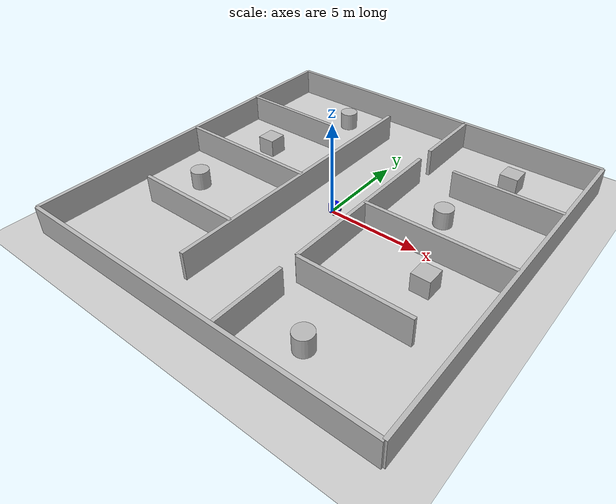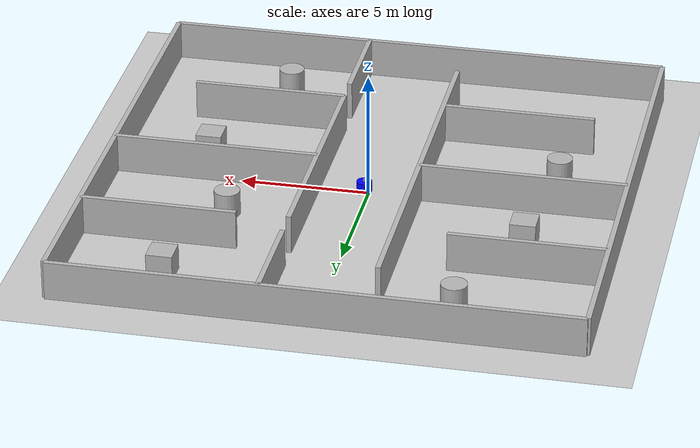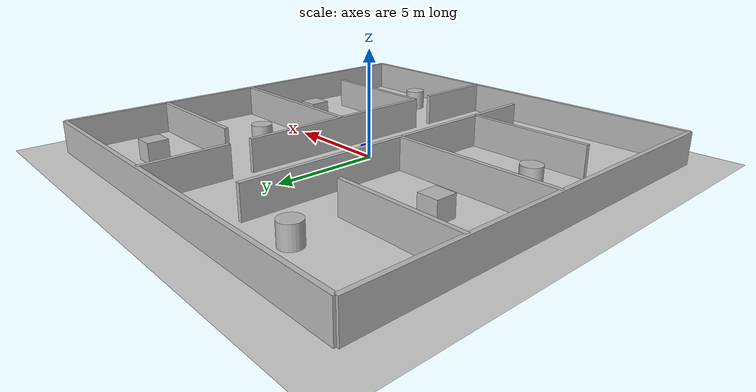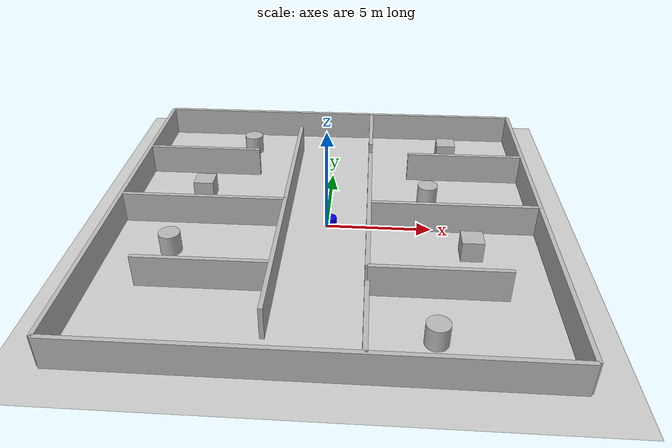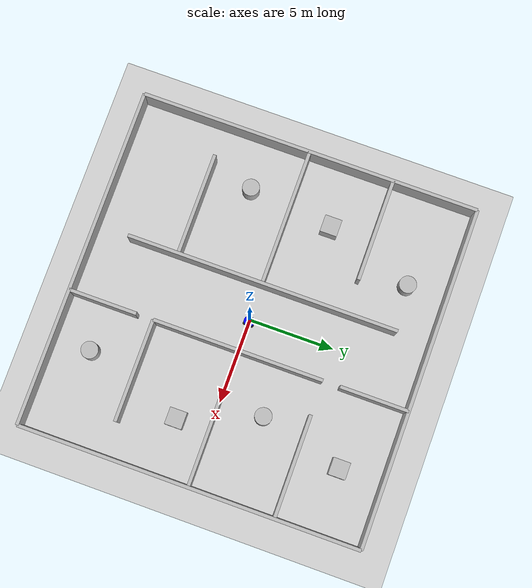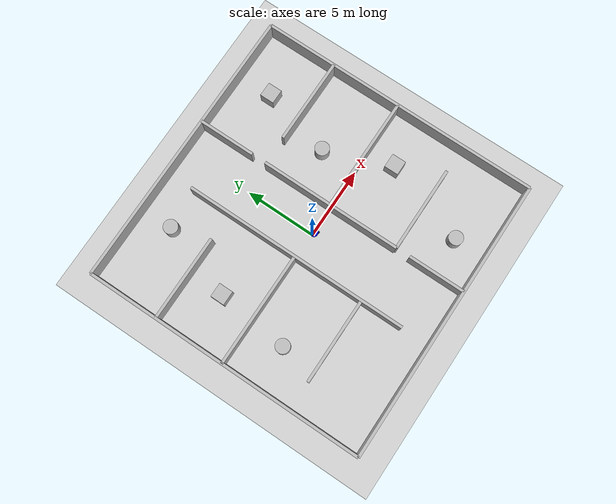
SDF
<sdf version='1.7'>
  <world name='diff_drive'>
    <physics name='1ms' type='ignored'>
      <max_step_size>0.001</max_step_size>
      <real_time_factor>1</real_time_factor>
      <real_time_update_rate>1000</real_time_update_rate>
    </physics>
    <plugin name='ignition::gazebo::systems::Physics' filename='ignition-gazebo-physics-system'/>
    <plugin name='ignition::gazebo::systems::UserCommands' filename='ignition-gazebo-user-commands-system'/>
    <plugin name='ignition::gazebo::systems::SceneBroadcaster' filename='ignition-gazebo-scene-broadcaster-system'/>
    <plugin name='ignition::gazebo::systems::Sensors' filename='libignition-gazebo-sensors-system.so'>
      <render_engine>ogre</render_engine>
    </plugin>
    <light name='sun' type='directional'>
      <cast_shadows>1</cast_shadows>
      <pose>0 0 10 0 -0 0</pose>
      <diffuse>1 1 1 1</diffuse>
      <specular>0.5 0.5 0.5 1</specular>
      <attenuation>
        <range>1000</range>
        <constant>0.9</constant>
        <linear>0.01</linear>
        <quadratic>0.001</quadratic>
      </attenuation>
      <direction>-0.5 0.1 -0.9</direction>
      <spot>
        <inner_angle>0</inner_angle>
        <outer_angle>0</outer_angle>
        <falloff>0</falloff>
      </spot>
    </light>
    <gravity>0 0 -9.8</gravity>
    <magnetic_field>6e-06 2.3e-05 -4.2e-05</magnetic_field>
    <atmosphere type='adiabatic'/>
    <scene>
      <ambient>0.4 0.4 0.4 1</ambient>
      <background>0.7 0.7 0.7 1</background>
      <shadows>1</shadows>
    </scene>
    <model name='ground_plane'>
      <static>1</static>
      <link name='link'>
        <collision name='collision'>
          <geometry>
            <plane>
              <normal>0 0 1</normal>
              <size>1 1</size>
            </plane>
          </geometry>
          <surface>
            <friction>
              <ode/>
            </friction>
            <contact/>
          </surface>
        </collision>
        <visual name='visual'>
          <geometry>
            <plane>
              <normal>0 0 1</normal>
              <size>100 100</size>
            </plane>
          </geometry>
          <material>
            <ambient>0.8 0.8 0.8 1</ambient>
            <diffuse>0.8 0.8 0.8 1</diffuse>
            <specular>0.8 0.8 0.8 1</specular>
          </material>
          <plugin name='__default__' filename='__default__'/>
        </visual>
      </link>
      <plugin name='__default__' filename='__default__'/>
      <pose>0 0 0 0 -0 0</pose>
    </model>
    <model name='wall'>
      <pose>10 0 0.5 0 -0 0</pose>
      <link name='body'>
        <collision name='collision1'>
          <geometry>
            <box>
              <size>0.2 20 2</size>
            </box>
          </geometry>
          <surface>
            <friction>
              <ode/>
            </friction>
            <contact/>
          </surface>
        </collision>
        <visual name='visual1'>
          <geometry>
            <box>
              <size>0.2 20 2</size>
            </box>
          </geometry>
          <plugin name='__default__' filename='__default__'/>
        </visual>
      </link>
      <plugin name='__default__' filename='__default__'/>
    </model>
    <model name='wall1'>
      <pose>-10 0 0.5 0 -0 0</pose>
      <link name='body'>
        <collision name='collision1'>
          <geometry>
            <box>
              <size>0.2 20 2</size>
            </box>
          </geometry>
          <surface>
            <friction>
              <ode/>
            </friction>
            <contact/>
          </surface>
        </collision>
        <visual name='visual1'>
          <geometry>
            <box>
              <size>0.2 20 2</size>
            </box>
          </geometry>
          <plugin name='__default__' filename='__default__'/>
        </visual>
      </link>
      <plugin name='__default__' filename='__default__'/>
    </model>
    <model name='wall2'>
      <pose>0 10 0.5 0 -0 0</pose>
      <link name='body'>
        <collision name='collision1'>
          <geometry>
            <box>
              <size>20 0.2 2</size>
            </box>
          </geometry>
          <surface>
            <friction>
              <ode/>
            </friction>
            <contact/>
          </surface>
        </collision>
        <visual name='visual1'>
          <geometry>
            <box>
              <size>20 0.2 2</size>
            </box>
          </geometry>
          <plugin name='__default__' filename='__default__'/>
        </visual>
      </link>
      <plugin name='__default__' filename='__default__'/>
    </model>
    <model name='wall3'>
      <pose>0 -10 0.5 0 -0 0</pose>
      <link name='body'>
        <collision name='collision1'>
          <geometry>
            <box>
              <size>20 0.2 2</size>
            </box>
          </geometry>
          <surface>
            <friction>
              <ode/>
            </friction>
            <contact/>
          </surface>
        </collision>
        <visual name='visual1'>
          <geometry>
            <box>
              <size>20 0.2 2</size>
            </box>
          </geometry>
          <plugin name='__default__' filename='__default__'/>
        </visual>
      </link>
      <plugin name='__default__' filename='__default__'/>
    </model>
    <model name='roomwall'>
      <pose>2 0 0.5 0 -0 0</pose>
      <link name='body'>
        <collision name='collision1'>
          <geometry>
            <box>
              <size>0.2 10 2</size>
            </box>
          </geometry>
          <surface>
            <friction>
              <ode/>
            </friction>
            <contact/>
          </surface>
        </collision>
        <visual name='visual1'>
          <geometry>
            <box>
              <size>0.2 10 2</size>
            </box>
          </geometry>
          <plugin name='__default__' filename='__default__'/>
        </visual>
      </link>
      <plugin name='__default__' filename='__default__'/>
    </model>
    <model name='roomwall2'>
      <pose>6 0 0.5 0 -0 0</pose>
      <link name='body'>
        <collision name='collision1'>
          <geometry>
            <box>
              <size>8 0.2 2</size>
            </box>
          </geometry>
          <surface>
            <friction>
              <ode/>
            </friction>
            <contact/>
          </surface>
        </collision>
        <visual name='visual1'>
          <geometry>
            <box>
              <size>8 0.2 2</size>
            </box>
          </geometry>
          <plugin name='__default__' filename='__default__'/>
        </visual>
      </link>
      <plugin name='__default__' filename='__default__'/>
    </model>
    <model name='roomwall3'>
      <pose>2 8 0.5 0 -0 0</pose>
      <link name='body'>
        <collision name='collision1'>
          <geometry>
            <box>
              <size>0.2 4 2</size>
            </box>
          </geometry>
          <surface>
            <friction>
              <ode/>
            </friction>
            <contact/>
          </surface>
        </collision>
        <visual name='visual1'>
          <geometry>
            <box>
              <size>0.2 4 2</size>
            </box>
          </geometry>
          <plugin name='__default__' filename='__default__'/>
        </visual>
      </link>
      <plugin name='__default__' filename='__default__'/>
    </model>
    <model name='roomwall4'>
      <pose>2 -8 0.5 0 -0 0</pose>
      <link name='body'>
        <collision name='collision1'>
          <geometry>
            <box>
              <size>0.2 4 2</size>
            </box>
          </geometry>
          <surface>
            <friction>
              <ode/>
            </friction>
            <contact/>
          </surface>
        </collision>
        <visual name='visual1'>
          <geometry>
            <box>
              <size>0.2 4 2</size>
            </box>
          </geometry>
          <plugin name='__default__' filename='__default__'/>
        </visual>
      </link>
      <plugin name='__default__' filename='__default__'/>
    </model>
    <model name='roomwall5'>
      <pose>-2 0 0.5 0 -0 0</pose>
      <link name='body'>
        <collision name='collision1'>
          <geometry>
            <box>
              <size>0.2 16 2</size>
            </box>
          </geometry>
          <surface>
            <friction>
              <ode/>
            </friction>
            <contact/>
          </surface>
        </collision>
        <visual name='visual1'>
          <geometry>
            <box>
              <size>0.2 16 2</size>
            </box>
          </geometry>
          <plugin name='__default__' filename='__default__'/>
        </visual>
      </link>
      <plugin name='__default__' filename='__default__'/>
    </model>
    <model name='roomwall6'>
      <pose>-6 0 0.5 0 -0 0</pose>
      <link name='body'>
        <collision name='collision1'>
          <geometry>
            <box>
              <size>8 0.2 2</size>
            </box>
          </geometry>
          <surface>
            <friction>
              <ode/>
            </friction>
            <contact/>
          </surface>
        </collision>
        <visual name='visual1'>
          <geometry>
            <box>
              <size>8 0.2 2</size>
            </box>
          </geometry>
          <plugin name='__default__' filename='__default__'/>
        </visual>
      </link>
      <plugin name='__default__' filename='__default__'/>
    </model>
    <model name='roomwall7'>
      <pose>7 5 0.5 0 -0 0</pose>
      <link name='body'>
        <collision name='collision1'>
          <geometry>
            <box>
              <size>6 0.2 2</size>
            </box>
          </geometry>
          <surface>
            <friction>
              <ode/>
            </friction>
            <contact/>
          </surface>
        </collision>
        <visual name='visual1'>
          <geometry>
            <box>
              <size>6 0.2 2</size>
            </box>
          </geometry>
          <plugin name='__default__' filename='__default__'/>
        </visual>
      </link>
      <plugin name='__default__' filename='__default__'/>
    </model>
    <model name='roomwall8'>
      <pose>-7 5 0.5 0 -0 0</pose>
      <link name='body'>
        <collision name='collision1'>
          <geometry>
            <box>
              <size>6 0.2 2</size>
            </box>
          </geometry>
          <surface>
            <friction>
              <ode/>
            </friction>
            <contact/>
          </surface>
        </collision>
        <visual name='visual1'>
          <geometry>
            <box>
              <size>6 0.2 2</size>
            </box>
          </geometry>
          <plugin name='__default__' filename='__default__'/>
        </visual>
      </link>
      <plugin name='__default__' filename='__default__'/>
    </model>
    <model name='roomwall9'>
      <pose>5 -5 0.5 0 -0 0</pose>
      <link name='body'>
        <collision name='collision1'>
          <geometry>
            <box>
              <size>6 0.2 2</size>
            </box>
          </geometry>
          <surface>
            <friction>
              <ode/>
            </friction>
            <contact/>
          </surface>
        </collision>
        <visual name='visual1'>
          <geometry>
            <box>
              <size>6 0.2 2</size>
            </box>
          </geometry>
          <plugin name='__default__' filename='__default__'/>
        </visual>
      </link>
      <plugin name='__default__' filename='__default__'/>
    </model>
    <model name='roomwall10'>
      <pose>-5 -5 0.5 0 -0 0</pose>
      <link name='body'>
        <collision name='collision1'>
          <geometry>
            <box>
              <size>6 0.2 2</size>
            </box>
          </geometry>
          <surface>
            <friction>
              <ode/>
            </friction>
            <contact/>
          </surface>
        </collision>
        <visual name='visual1'>
          <geometry>
            <box>
              <size>6 0.2 2</size>
            </box>
          </geometry>
          <plugin name='__default__' filename='__default__'/>
        </visual>
      </link>
      <plugin name='__default__' filename='__default__'/>
    </model>
    <model name='vehicle_blue'>
      <pose>0 0 0.325 0 -0 0</pose>
      <link name='chassis'>
        <pose>0.151427 -0 0 0 -0 0</pose>
        <inertial>
          <mass>1.14395</mass>
          <inertia>
            <ixx>0.126164</ixx>
            <ixy>0</ixy>
            <ixz>0</ixz>
            <iyy>0.416519</iyy>
            <iyz>0</iyz>
            <izz>0.481014</izz>
          </inertia>
        </inertial>
        <visual name='visual'>
          <geometry>
            <cylinder>
              <radius>0.3</radius>
              <length>0.4</length>
            </cylinder>
          </geometry>
          <material>
            <ambient>0.00588235 0.00588235 1 1</ambient>
            <diffuse>0.00588235 0.00588235 1 1</diffuse>
            <specular>0 0 1 1</specular>
          </material>
          <plugin name='__default__' filename='__default__'/>
        </visual>
        <collision name='collision'>
          <geometry>
            <box>
              <size>2.01142 1 0.568726</size>
            </box>
          </geometry>
          <surface>
            <friction>
              <ode/>
            </friction>
            <contact/>
          </surface>
        </collision>
      </link>
      <link name='left_wheel'>
        <pose>0.3 0.225029 -0.2 -1.5707 0 0</pose>
        <inertial>
          <mass>2</mass>
          <inertia>
            <ixx>0.145833</ixx>
            <ixy>0</ixy>
            <ixz>0</ixz>
            <iyy>0.145833</iyy>
            <iyz>0</iyz>
            <izz>0.125</izz>
          </inertia>
        </inertial>
        <visual name='visual'>
          <geometry>
            <sphere>
              <radius>0.1</radius>
            </sphere>
          </geometry>
          <material>
            <ambient>0.2 0.2 0.2 1</ambient>
            <diffuse>0.2 0.2 0.2 1</diffuse>
            <specular>0.2 0.2 0.2 1</specular>
          </material>
          <plugin name='__default__' filename='__default__'/>
        </visual>
        <collision name='collision'>
          <geometry>
            <sphere>
              <radius>0.1</radius>
            </sphere>
          </geometry>
          <surface>
            <friction>
              <ode/>
            </friction>
            <contact/>
          </surface>
        </collision>
      </link>
      <link name='right_wheel'>
        <pose>0.3 -0.225029 -0.2 -1.5707 0 0</pose>
        <inertial>
          <mass>2</mass>
          <inertia>
            <ixx>0.145833</ixx>
            <ixy>0</ixy>
            <ixz>0</ixz>
            <iyy>0.145833</iyy>
            <iyz>0</iyz>
            <izz>0.125</izz>
          </inertia>
        </inertial>
        <visual name='visual'>
          <geometry>
            <sphere>
              <radius>0.1</radius>
            </sphere>
          </geometry>
          <material>
            <ambient>0.2 0.2 0.2 1</ambient>
            <diffuse>0.2 0.2 0.2 1</diffuse>
            <specular>0.2 0.2 0.2 1</specular>
          </material>
          <plugin name='__default__' filename='__default__'/>
        </visual>
        <collision name='collision'>
          <geometry>
            <sphere>
              <radius>0.1</radius>
            </sphere>
          </geometry>
          <surface>
            <friction>
              <ode/>
            </friction>
            <contact/>
          </surface>
        </collision>
      </link>
      <link name='caster'>
        <pose>-0 -0 -0.2 0 -0 0</pose>
        <inertial>
          <mass>1</mass>
          <inertia>
            <ixx>0.1</ixx>
            <ixy>0</ixy>
            <ixz>0</ixz>
            <iyy>0.1</iyy>
            <iyz>0</iyz>
            <izz>0.1</izz>
          </inertia>
        </inertial>
        <visual name='visual'>
          <geometry>
            <sphere>
              <radius>0.1</radius>
            </sphere>
          </geometry>
          <material>
            <ambient>0.2 0.2 0.2 1</ambient>
            <diffuse>0.2 0.2 0.2 1</diffuse>
            <specular>0.2 0.2 0.2 1</specular>
          </material>
          <plugin name='__default__' filename='__default__'/>
        </visual>
        <collision name='collision'>
          <geometry>
            <sphere>
              <radius>0.1</radius>
            </sphere>
          </geometry>
          <surface>
            <friction>
              <ode/>
            </friction>
            <contact/>
          </surface>
        </collision>
      </link>
      <link name='lidar'>
        <pose>0.15 -0 0.25 0 -0 0</pose>
        <inertial>
          <mass>1.14395</mass>
          <inertia>
            <ixx>0.126164</ixx>
            <ixy>0</ixy>
            <ixz>0</ixz>
            <iyy>0.416519</iyy>
            <iyz>0</iyz>
            <izz>0.481014</izz>
          </inertia>
        </inertial>
        <visual name='visual'>
          <geometry>
            <box>
              <size>0.1 0.11 0.1</size>
            </box>
          </geometry>
          <material>
            <ambient>0.5 0.5 1 1</ambient>
            <diffuse>0.5 0.5 1 1</diffuse>
            <specular>0 0 1 1</specular>
          </material>
          <plugin name='__default__' filename='__default__'/>
        </visual>
        <sensor name='gpu_lidar' type='gpu_lidar'>
          <topic>lidar</topic>
          <update_rate>100</update_rate>
          <lidar>
            <scan>
              <horizontal>
                <samples>640</samples>
                <resolution>1</resolution>
                <min_angle>-3.14</min_angle>
                <max_angle>3.14</max_angle>
              </horizontal>
              <vertical>
                <samples>16</samples>
                <resolution>1</resolution>
                <min_angle>-0.261799</min_angle>
                <max_angle>0.261799</max_angle>
              </vertical>
            </scan>
            <range>
              <min>0.08</min>
              <max>10</max>
              <resolution>0.01</resolution>
            </range>
          </lidar>
          <visualize>1</visualize>
          <alwaysOn>1</alwaysOn>
          <plugin name='__default__' filename='__default__'/>
        </sensor>
      </link>
      <joint name='left_wheel_joint' type='revolute'>
        <parent>chassis</parent>
        <child>left_wheel</child>
        <axis>
          <xyz>0 0 1</xyz>
          <limit>
            <lower>-1.79769e+308</lower>
            <upper>1.79769e+308</upper>
          </limit>
        </axis>
      </joint>
      <joint name='lidar_joint' type='fixed'>
        <parent>chassis</parent>
        <child>lidar</child>
        <axis>
          <xyz>0 0 1</xyz>
          <limit>
            <lower>-1.79769e+308</lower>
            <upper>1.79769e+308</upper>
          </limit>
        </axis>
      </joint>
      <joint name='right_wheel_joint' type='revolute'>
        <parent>chassis</parent>
        <child>right_wheel</child>
        <axis>
          <xyz>0 0 1</xyz>
          <limit>
            <lower>-1.79769e+308</lower>
            <upper>1.79769e+308</upper>
          </limit>
        </axis>
      </joint>
      <joint name='caster_wheel' type='ball'>
        <parent>chassis</parent>
        <child>caster</child>
      </joint>
      <plugin name='ignition::gazebo::systems::DiffDrive' filename='ignition-gazebo-diff-drive-system'>
        <left_joint>left_wheel_joint</left_joint>
        <right_joint>right_wheel_joint</right_joint>
        <wheel_separation>0.450058</wheel_separation>
        <wheel_radius>0.1</wheel_radius>
        <odom_publish_frequency>100</odom_publish_frequency>
      </plugin>
    </model>
    <model name='box'>
      <pose>6.22648 7.47132 0.5 0 -0 0</pose>
      <link name='box_link'>
        <inertial>
          <inertia>
            <ixx>0.167</ixx>
            <ixy>0</ixy>
            <ixz>0</ixz>
            <iyy>0.167</iyy>
            <iyz>0</iyz>
            <izz>0.167</izz>
          </inertia>
          <mass>1</mass>
        </inertial>
        <collision name='box_collision'>
          <geometry>
            <box>
              <size>1 1 1</size>
            </box>
          </geometry>
          <surface>
            <friction>
              <ode/>
            </friction>
            <contact/>
          </surface>
        </collision>
        <visual name='box_visual'>
          <geometry>
            <box>
              <size>1 1 1</size>
            </box>
          </geometry>
          <plugin name='__default__' filename='__default__'/>
        </visual>
      </link>
      <plugin name='__default__' filename='__default__'/>
    </model>
    <model name='cylinder'>
      <pose>4.94461 2.56357 0.5 0 -0 0</pose>
      <link name='cylinder_link'>
        <inertial>
          <inertia>
            <ixx>0.146</ixx>
            <ixy>0</ixy>
            <ixz>0</ixz>
            <iyy>0.146</iyy>
            <iyz>0</iyz>
            <izz>0.125</izz>
          </inertia>
          <mass>1</mass>
        </inertial>
        <collision name='cylinder_collision'>
          <geometry>
            <cylinder>
              <radius>0.5</radius>
              <length>1</length>
            </cylinder>
          </geometry>
          <surface>
            <friction>
              <ode/>
            </friction>
            <contact/>
          </surface>
        </collision>
        <visual name='cylinder_visual'>
          <geometry>
            <cylinder>
              <radius>0.5</radius>
              <length>1</length>
            </cylinder>
          </geometry>
          <plugin name='__default__' filename='__default__'/>
        </visual>
      </link>
      <plugin name='__default__' filename='__default__'/>
    </model>
    <model name='cylinder_0'>
      <pose>4.7524 -7.80486 0.5 0 -0 0</pose>
      <link name='cylinder_link'>
        <inertial>
          <inertia>
            <ixx>0.146</ixx>
            <ixy>0</ixy>
            <ixz>0</ixz>
            <iyy>0.146</iyy>
            <iyz>0</iyz>
            <izz>0.125</izz>
          </inertia>
          <mass>1</mass>
        </inertial>
        <collision name='cylinder_collision'>
          <geometry>
            <cylinder>
              <radius>0.5</radius>
              <length>1</length>
            </cylinder>
          </geometry>
          <surface>
            <friction>
              <ode/>
            </friction>
            <contact/>
          </surface>
        </collision>
        <visual name='cylinder_visual'>
          <geometry>
            <cylinder>
              <radius>0.5</radius>
              <length>1</length>
            </cylinder>
          </geometry>
          <plugin name='__default__' filename='__default__'/>
        </visual>
      </link>
      <plugin name='__default__' filename='__default__'/>
    </model>
    <model name='box_0'>
      <pose>6.68117 -1.96409 0.5 0 -0 0</pose>
      <link name='box_link'>
        <inertial>
          <inertia>
            <ixx>0.167</ixx>
            <ixy>0</ixy>
            <ixz>0</ixz>
            <iyy>0.167</iyy>
            <iyz>0</iyz>
            <izz>0.167</izz>
          </inertia>
          <mass>1</mass>
        </inertial>
        <collision name='box_collision'>
          <geometry>
            <box>
              <size>1 1 1</size>
            </box>
          </geometry>
          <surface>
            <friction>
              <ode/>
            </friction>
            <contact/>
          </surface>
        </collision>
        <visual name='box_visual'>
          <geometry>
            <box>
              <size>1 1 1</size>
            </box>
          </geometry>
          <plugin name='__default__' filename='__default__'/>
        </visual>
      </link>
      <plugin name='__default__' filename='__default__'/>
    </model>
    <model name='cylinder_1'>
      <pose>-7.03618 -2.47799 0.5 0 -0 0</pose>
      <link name='cylinder_link'>
        <inertial>
          <inertia>
            <ixx>0.146</ixx>
            <ixy>0</ixy>
            <ixz>0</ixz>
            <iyy>0.146</iyy>
            <iyz>0</iyz>
            <izz>0.125</izz>
          </inertia>
          <mass>1</mass>
        </inertial>
        <collision name='cylinder_collision'>
          <geometry>
            <cylinder>
              <radius>0.5</radius>
              <length>1</length>
            </cylinder>
          </geometry>
          <surface>
            <friction>
              <ode/>
            </friction>
            <contact/>
          </surface>
        </collision>
        <visual name='cylinder_visual'>
          <geometry>
            <cylinder>
              <radius>0.5</radius>
              <length>1</length>
            </cylinder>
          </geometry>
          <plugin name='__default__' filename='__default__'/>
        </visual>
      </link>
      <plugin name='__default__' filename='__default__'/>
    </model>
    <model name='box_1'>
      <pose>-6.48596 2.53131 0.5 0 -0 0</pose>
      <link name='box_link'>
        <inertial>
          <inertia>
            <ixx>0.167</ixx>
            <ixy>0</ixy>
            <ixz>0</ixz>
            <iyy>0.167</iyy>
            <iyz>0</iyz>
            <izz>0.167</izz>
          </inertia>
          <mass>1</mass>
        </inertial>
        <collision name='box_collision'>
          <geometry>
            <box>
              <size>1 1 1</size>
            </box>
          </geometry>
          <surface>
            <friction>
              <ode/>
            </friction>
            <contact/>
          </surface>
        </collision>
        <visual name='box_visual'>
          <geometry>
            <box>
              <size>1 1 1</size>
            </box>
          </geometry>
          <plugin name='__default__' filename='__default__'/>
        </visual>
      </link>
      <plugin name='__default__' filename='__default__'/>
    </model>
    <model name='cylinder_2'>
      <pose>-4.76471 7.7141 0.5 0 -0 0</pose>
      <link name='cylinder_link'>
        <inertial>
          <inertia>
            <ixx>0.146</ixx>
            <ixy>0</ixy>
            <ixz>0</ixz>
            <iyy>0.146</iyy>
            <iyz>0</iyz>
            <izz>0.125</izz>
          </inertia>
          <mass>1</mass>
        </inertial>
        <collision name='cylinder_collision'>
          <geometry>
            <cylinder>
              <radius>0.5</radius>
              <length>1</length>
            </cylinder>
          </geometry>
          <surface>
            <friction>
              <ode/>
            </friction>
            <contact/>
          </surface>
        </collision>
        <visual name='cylinder_visual'>
          <geometry>
            <cylinder>
              <radius>0.5</radius>
              <length>1</length>
            </cylinder>
          </geometry>
          <plugin name='__default__' filename='__default__'/>
        </visual>
      </link>
      <plugin name='__default__' filename='__default__'/>
    </model>
  </world>
</sdf>
